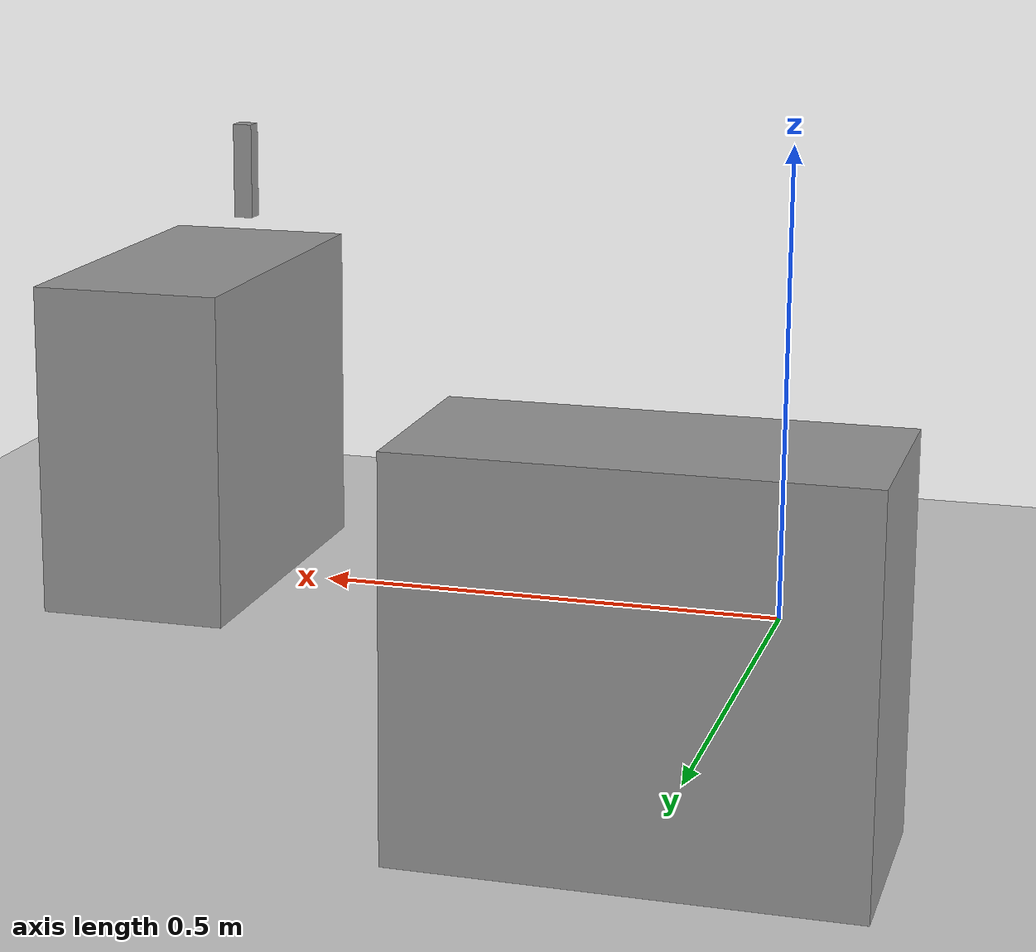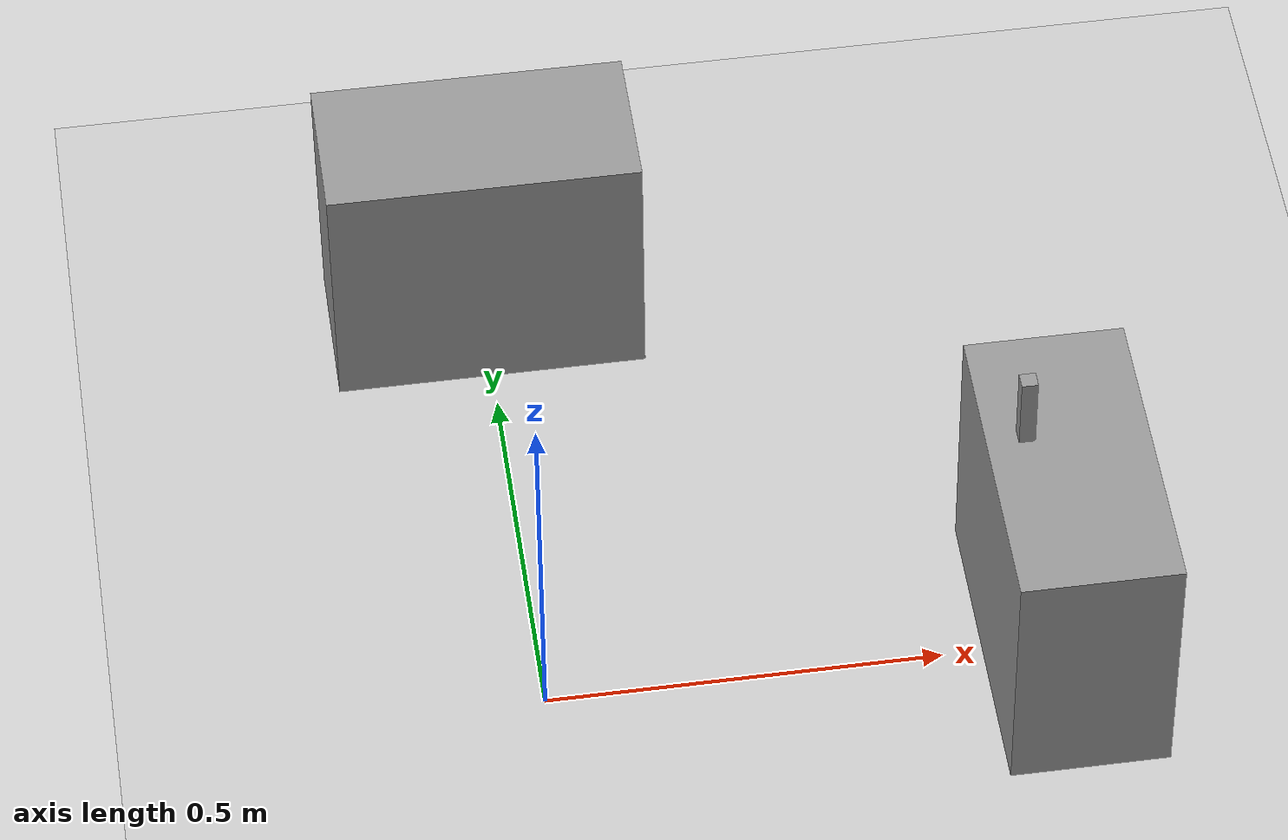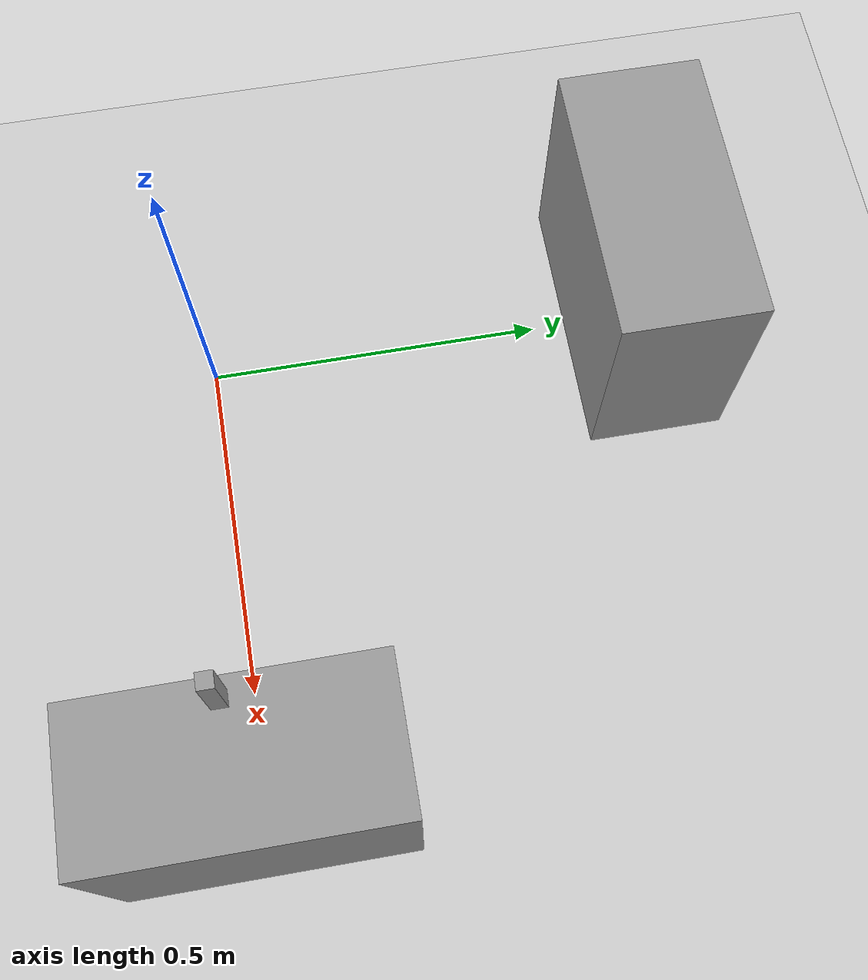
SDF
<?xml version="1.0" ?>
<sdf version="1.5">
  <world name="default">
    <!-- A global light source -->
    <include>
      <uri>model://sun</uri>
    </include>
    <!-- A ground plane -->
    <include>
      <uri>model://ground_plane</uri>
    </include>
    <include>
      <uri>model://boxes</uri>
    </include>
  </world>
</sdf>

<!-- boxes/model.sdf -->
<sdf version='1.7'>
  <model name='boxes'>
    <link name='link_0'>
      <inertial>
        <mass>100</mass>
        <inertia>
          <ixx>0.166667</ixx>
          <ixy>0</ixy>
          <ixz>0</ixz>
          <iyy>0.166667</iyy>
          <iyz>0</iyz>
          <izz>0.166667</izz>
        </inertia>
        <pose>0 0 0 0 -0 0</pose>
      </inertial>
      <pose>0.65 0 0.175 0 -0 0</pose>
      <gravity>1</gravity>
      <self_collide>1</self_collide>
      <kinematic>0</kinematic>
      <enable_wind>0</enable_wind>
      <visual name='visual'>
        <pose>0 0 0 0 -0 0</pose>
        <geometry>
          <box>
            <size>0.2 0.4 0.35</size>
          </box>
        </geometry>
        <material>
          <lighting>1</lighting>
          <script>
            <uri>file://media/materials/scripts/gazebo.material</uri>
            <name>Gazebo/Grey</name>
          </script>
          <shader type='pixel'>
            <normal_map>__default__</normal_map>
          </shader>
          <ambient>0.3 0.3 0.3 1</ambient>
          <diffuse>0.7 0.7 0.7 1</diffuse>
          <specular>0.01 0.01 0.01 1</specular>
          <emissive>0 0 0 1</emissive>
        </material>
        <transparency>0</transparency>
        <cast_shadows>1</cast_shadows>
      </visual>
      <collision name='collision'>
        <laser_retro>0</laser_retro>
        <max_contacts>10</max_contacts>
        <pose>0 0 0 0 -0 0</pose>
        <geometry>
          <box>
            <size>0.2 0.4 0.35</size>
          </box>
        </geometry>
        <surface>
          <friction>
            <ode>
              <mu>1</mu>
              <mu2>1</mu2>
              <fdir1>0 0 0</fdir1>
              <slip1>0</slip1>
              <slip2>0</slip2>
            </ode>
            <torsional>
              <coefficient>1</coefficient>
              <patch_radius>0</patch_radius>
              <surface_radius>0</surface_radius>
              <use_patch_radius>1</use_patch_radius>
              <ode>
                <slip>0</slip>
              </ode>
            </torsional>
          </friction>
          <bounce>
            <restitution_coefficient>0</restitution_coefficient>
            <threshold>1e+06</threshold>
          </bounce>
          <contact>
            <collide_without_contact>0</collide_without_contact>
            <collide_without_contact_bitmask>1</collide_without_contact_bitmask>
            <collide_bitmask>1</collide_bitmask>
            <ode>
              <soft_cfm>0</soft_cfm>
              <soft_erp>0.2</soft_erp>
              <kp>1e+13</kp>
              <kd>1</kd>
              <max_vel>0.01</max_vel>
              <min_depth>0</min_depth>
            </ode>
            <bullet>
              <split_impulse>1</split_impulse>
              <split_impulse_penetration_threshold>-0.01</split_impulse_penetration_threshold>
              <soft_cfm>0</soft_cfm>
              <soft_erp>0.2</soft_erp>
              <kp>1e+13</kp>
              <kd>1</kd>
            </bullet>
          </contact>
        </surface>
      </collision>
    </link>
    <link name='link_1'>
      <inertial>
        <mass>1</mass>
        <inertia>
          <ixx>0.166667</ixx>
          <ixy>0</ixy>
          <ixz>0</ixz>
          <iyy>0.166667</iyy>
          <iyz>0</iyz>
          <izz>0.166667</izz>
        </inertia>
        <pose>0 0 0 0 -0 0</pose>
      </inertial>
      <pose>0.59 0 0.45 0 -0 0</pose>
      <gravity>1</gravity>
      <self_collide>1</self_collide>
      <kinematic>0</kinematic>
      <enable_wind>0</enable_wind>
      <visual name='visual'>
        <pose>0 0 0 0 -0 0</pose>
        <geometry>
          <box>
            <size>0.02 0.02 0.1</size>
          </box>
        </geometry>
        <material>
          <lighting>1</lighting>
          <script>
            <uri>file://media/materials/scripts/gazebo.material</uri>
            <name>Gazebo/Grey</name>
          </script>
          <shader type='pixel'>
            <normal_map>__default__</normal_map>
          </shader>
          <ambient>0.3 0.3 0.3 1</ambient>
          <diffuse>0.7 0.7 0.7 1</diffuse>
          <specular>0.01 0.01 0.01 1</specular>
          <emissive>0 0 0 1</emissive>
        </material>
        <transparency>0</transparency>
        <cast_shadows>1</cast_shadows>
      </visual>
      <collision name='collision'>
        <laser_retro>0</laser_retro>
        <max_contacts>10</max_contacts>
        <pose>0 0 0 0 -0 0</pose>
        <geometry>
          <box>
            <size>0.02 0.02 0.1</size>
          </box>
        </geometry>
        <surface>
          <friction>
            <ode>
              <mu>1</mu>
              <mu2>1</mu2>
              <fdir1>0 0 0</fdir1>
              <slip1>0</slip1>
              <slip2>0</slip2>
            </ode>
            <torsional>
              <coefficient>1</coefficient>
              <patch_radius>0</patch_radius>
              <surface_radius>0</surface_radius>
              <use_patch_radius>1</use_patch_radius>
              <ode>
                <slip>0</slip>
              </ode>
            </torsional>
          </friction>
          <bounce>
            <restitution_coefficient>0</restitution_coefficient>
            <threshold>1e+06</threshold>
          </bounce>
          <contact>
            <collide_without_contact>0</collide_without_contact>
            <collide_without_contact_bitmask>1</collide_without_contact_bitmask>
            <collide_bitmask>1</collide_bitmask>
            <ode>
              <soft_cfm>0</soft_cfm>
              <soft_erp>0.2</soft_erp>
              <kp>1e+13</kp>
              <kd>1</kd>
              <max_vel>0.01</max_vel>
              <min_depth>0</min_depth>
            </ode>
            <bullet>
              <split_impulse>1</split_impulse>
              <split_impulse_penetration_threshold>-0.01</split_impulse_penetration_threshold>
              <soft_cfm>0</soft_cfm>
              <soft_erp>0.2</soft_erp>
              <kp>1e+13</kp>
              <kd>1</kd>
            </bullet>
          </contact>
        </surface>
      </collision>
    </link>
    <link name='link_2'>
      <inertial>
        <mass>100</mass>
        <inertia>
          <ixx>0.166667</ixx>
          <ixy>0</ixy>
          <ixz>0</ixz>
          <iyy>0.166667</iyy>
          <iyz>0</iyz>
          <izz>0.166667</izz>
        </inertia>
        <pose>0 0 0 0 0 0</pose>
      </inertial>
      <pose>0 0.65 0.175 0 0 0</pose>
      <gravity>1</gravity>
      <self_collide>1</self_collide>
      <kinematic>0</kinematic>
      <enable_wind>0</enable_wind>
      <visual name='visual'>
        <pose>0 0 0 0 -0 0</pose>
        <geometry>
          <box>
            <size>0.4 0.2 0.35</size>
          </box>
        </geometry>
        <material>
          <lighting>1</lighting>
          <script>
            <uri>file://media/materials/scripts/gazebo.material</uri>
            <name>Gazebo/Grey</name>
          </script>
          <shader type='pixel'>
            <normal_map>__default__</normal_map>
          </shader>
          <ambient>0.3 0.3 0.3 1</ambient>
          <diffuse>0.7 0.7 0.7 1</diffuse>
          <specular>0.01 0.01 0.01 1</specular>
          <emissive>0 0 0 1</emissive>
        </material>
        <transparency>0</transparency>
        <cast_shadows>1</cast_shadows>
      </visual>
      <collision name='collision'>
        <laser_retro>0</laser_retro>
        <max_contacts>10</max_contacts>
        <pose>0 0 0 0 -0 0</pose>
        <geometry>
          <box>
            <size>0.4 0.2 0.35</size>
          </box>
        </geometry>
        <surface>
          <friction>
            <ode>
              <mu>1</mu>
              <mu2>1</mu2>
              <fdir1>0 0 0</fdir1>
              <slip1>0</slip1>
              <slip2>0</slip2>
            </ode>
            <torsional>
              <coefficient>1</coefficient>
              <patch_radius>0</patch_radius>
              <surface_radius>0</surface_radius>
              <use_patch_radius>1</use_patch_radius>
              <ode>
                <slip>0</slip>
              </ode>
            </torsional>
          </friction>
          <bounce>
            <restitution_coefficient>0</restitution_coefficient>
            <threshold>1e+06</threshold>
          </bounce>
          <contact>
            <collide_without_contact>0</collide_without_contact>
            <collide_without_contact_bitmask>1</collide_without_contact_bitmask>
            <collide_bitmask>1</collide_bitmask>
            <ode>
              <soft_cfm>0</soft_cfm>
              <soft_erp>0.2</soft_erp>
              <kp>1e+13</kp>
              <kd>1</kd>
              <max_vel>0.01</max_vel>
              <min_depth>0</min_depth>
            </ode>
            <bullet>
              <split_impulse>1</split_impulse>
              <split_impulse_penetration_threshold>-0.01</split_impulse_penetration_threshold>
              <soft_cfm>0</soft_cfm>
              <soft_erp>0.2</soft_erp>
              <kp>1e+13</kp>
              <kd>1</kd>
            </bullet>
          </contact>
        </surface>
      </collision>
    </link>
    <static>0</static>
    <allow_auto_disable>1</allow_auto_disable>
  </model>
</sdf>
